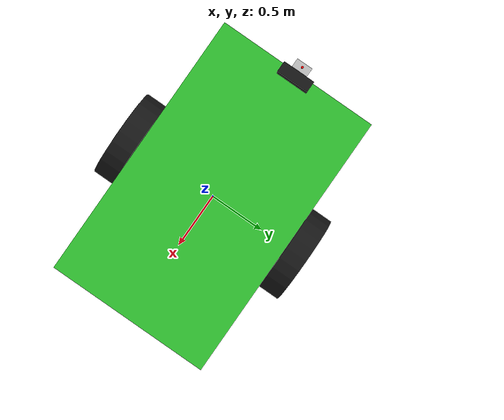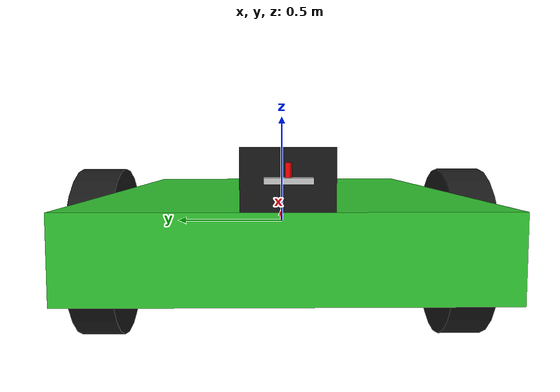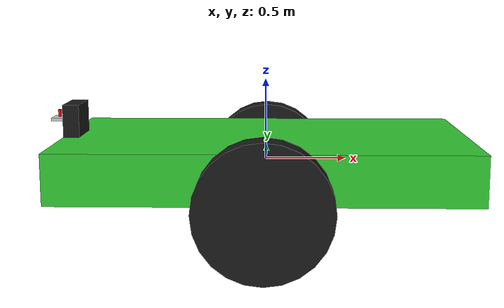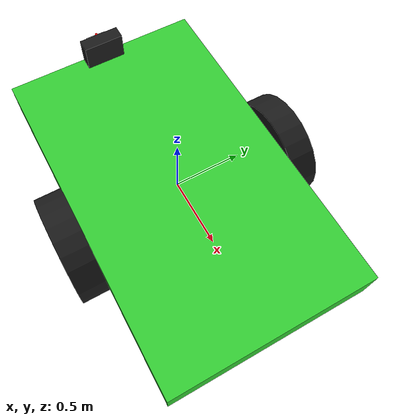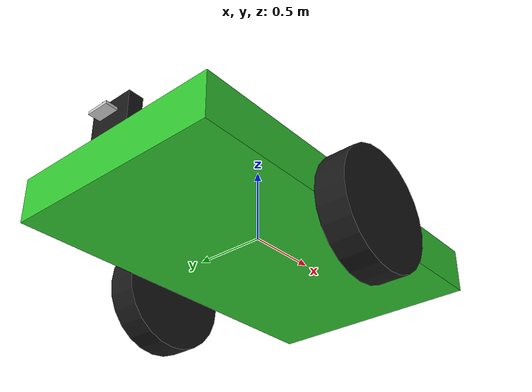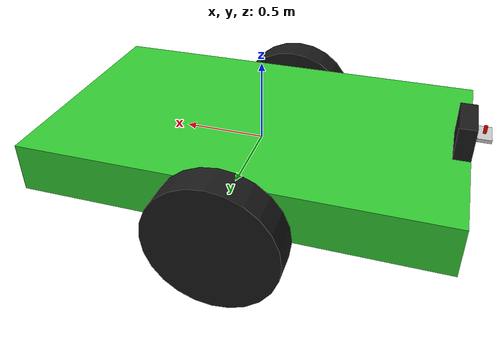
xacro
<?xml version="1.0"?>
<robot name="weedbot_tractor" xmlns:xacro="http://www.ros.org/wiki/xacro">

  <!-- Properties -->
  <xacro:property name="base_width" value="1.5"/>
  <xacro:property name="base_length" value="2.5"/>
  <xacro:property name="base_height" value="0.3"/>

  <!-- Base Link (Tractor Body) -->
  <link name="base_link">
    <visual>
      <geometry>
        <box size="${base_length} ${base_width} ${base_height}"/>
      </geometry>
      <material name="green">
        <color rgba="0.2 0.8 0.2 1.0"/>
      </material>
    </visual>
    <collision>
      <geometry>
        <box size="${base_length} ${base_width} ${base_height}"/>
      </geometry>
    </collision>
    <inertial>
      <mass value="500"/>
      <inertia ixx="50" ixy="0" ixz="0" iyy="80" iyz="0" izz="100"/>
    </inertial>
  </link>

  <!-- Camera Mount -->
  <link name="camera_mount">
    <visual>
      <geometry>
        <box size="0.1 0.3 0.2"/>
      </geometry>
      <material name="black">
        <color rgba="0.1 0.1 0.1 1.0"/>
      </material>
    </visual>
    <collision>
      <geometry>
        <box size="0.1 0.3 0.2"/>
      </geometry>
    </collision>
    <inertial>
      <mass value="2"/>
      <inertia ixx="0.02" ixy="0" ixz="0" iyy="0.02" iyz="0" izz="0.02"/>
    </inertial>
  </link>

  <joint name="camera_mount_joint" type="fixed">
    <parent link="base_link"/>
    <child link="camera_mount"/>
    <origin xyz="-${base_length/2 - 0.05} 0 ${base_height/2 + 0.1}" rpy="0 0 0"/>
  </joint>

  <!-- Camera Link -->
  <link name="camera_link">
    <visual>
      <geometry>
        <box size="0.05 0.1 0.05"/>
      </geometry>
      <material name="blue">
        <color rgba="0.2 0.2 0.8 1.0"/>
      </material>
    </visual>
    <collision>
      <geometry>
        <box size="0.05 0.1 0.05"/>
      </geometry>
    </collision>
    <inertial>
      <mass value="0.1"/>
      <inertia ixx="0.001" ixy="0" ixz="0" iyy="0.001" iyz="0" izz="0.001"/>
    </inertial>
  </link>

  <joint name="camera_joint" type="fixed">
    <parent link="camera_mount"/>
    <child link="camera_link"/>
    <origin xyz="0 0 -0.15" rpy="0 1.5708 0"/>
  </joint>

  <!-- Gazebo Camera Plugin -->
  <gazebo reference="camera_link">
    <sensor name="camera" type="camera">
      <update_rate>30.0</update_rate>
      <visualize>true</visualize>
      <camera name="weedbot_camera">
        <horizontal_fov>1.3962634</horizontal_fov>
        <image>
          <width>1280</width>
          <height>720</height>
          <format>R8G8B8</format>
        </image>
        <clip>
          <near>0.02</near>
          <far>300</far>
        </clip>
        <noise>
          <type>gaussian</type>
          <mean>0.0</mean>
          <stddev>0.007</stddev>
        </noise>
      </camera>
      <plugin name="camera_controller" filename="libgazebo_ros_camera.so">
        <ros>
          <namespace>/weedbot</namespace>
          <remapping>image_raw:=camera/image_raw</remapping>
          <remapping>camera_info:=camera/camera_info</remapping>
        </ros>
        <camera_name>camera</camera_name>
        <frame_name>camera_link</frame_name>
      </plugin>
    </sensor>
  </gazebo>

  <!-- Galvo Mirror -->
  <link name="galvo_mirror">
    <visual>
      <geometry>
        <box size="0.08 0.15 0.02"/>
      </geometry>
      <material name="silver">
        <color rgba="0.8 0.8 0.8 1.0"/>
      </material>
    </visual>
    <collision>
      <geometry>
        <box size="0.08 0.15 0.02"/>
      </geometry>
    </collision>
    <inertial>
      <mass value="0.5"/>
      <inertia ixx="0.001" ixy="0" ixz="0" iyy="0.001" iyz="0" izz="0.001"/>
    </inertial>
  </link>

  <joint name="galvo_x_joint" type="revolute">
    <parent link="camera_mount"/>
    <child link="galvo_mirror"/>
    <origin xyz="-0.1 0 0" rpy="0 0 0"/>
    <axis xyz="0 0 1"/>
    <limit lower="-0.785" upper="0.785" effort="10" velocity="5"/>
  </joint>

  <!-- Laser Pointer -->
  <link name="laser_pointer">
    <visual>
      <geometry>
        <cylinder radius="0.01" length="0.05"/>
      </geometry>
      <material name="red">
        <color rgba="1.0 0.0 0.0 1.0"/>
      </material>
    </visual>
    <inertial>
      <mass value="0.01"/>
      <inertia ixx="0.0001" ixy="0" ixz="0" iyy="0.0001" iyz="0" izz="0.0001"/>
    </inertial>
  </link>

  <joint name="laser_pointer_joint" type="fixed">
    <parent link="galvo_mirror"/>
    <child link="laser_pointer"/>
    <origin xyz="0 0 0.03" rpy="0 0 0"/>
  </joint>

  <!-- Differential Drive Plugin -->
  <gazebo>
    <plugin name="diff_drive" filename="libgazebo_ros_diff_drive.so">
      <ros>
        <namespace>/weedbot</namespace>
      </ros>
      <update_rate>50</update_rate>
      <left_joint>left_wheel_joint</left_joint>
      <right_joint>right_wheel_joint</right_joint>
      <wheel_separation>1.5</wheel_separation>
      <wheel_diameter>0.8</wheel_diameter>
      <max_wheel_torque>200</max_wheel_torque>
      <max_wheel_acceleration>1.0</max_wheel_acceleration>
      <command_topic>cmd_vel</command_topic>
      <publish_odom>true</publish_odom>
      <publish_odom_tf>true</publish_odom_tf>
      <publish_wheel_tf>false</publish_wheel_tf>
      <odometry_topic>odom</odometry_topic>
      <odometry_frame>odom</odometry_frame>
      <robot_base_frame>base_link</robot_base_frame>
    </plugin>
  </gazebo>

  <!-- Simplified wheels for differential drive -->
  <link name="left_wheel">
    <visual>
      <geometry>
        <cylinder radius="0.4" length="0.2"/>
      </geometry>
      <material name="black">
        <color rgba="0.1 0.1 0.1 1"/>
      </material>
    </visual>
    <collision>
      <geometry>
        <cylinder radius="0.4" length="0.2"/>
      </geometry>
    </collision>
    <inertial>
      <mass value="5"/>
      <inertia ixx="0.1" ixy="0" ixz="0" iyy="0.1" iyz="0" izz="0.1"/>
    </inertial>
  </link>

  <joint name="left_wheel_joint" type="continuous">
    <parent link="base_link"/>
    <child link="left_wheel"/>
    <origin xyz="0 0.85 -0.15" rpy="-1.5708 0 0"/>
    <axis xyz="0 0 1"/>
  </joint>

  <link name="right_wheel">
    <visual>
      <geometry>
        <cylinder radius="0.4" length="0.2"/>
      </geometry>
      <material name="black">
        <color rgba="0.1 0.1 0.1 1"/>
      </material>
    </visual>
    <collision>
      <geometry>
        <cylinder radius="0.4" length="0.2"/>
      </geometry>
    </collision>
    <inertial>
      <mass value="5"/>
      <inertia ixx="0.1" ixy="0" ixz="0" iyy="0.1" iyz="0" izz="0.1"/>
    </inertial>
  </link>

  <joint name="right_wheel_joint" type="continuous">
    <parent link="base_link"/>
    <child link="right_wheel"/>
    <origin xyz="0 -0.85 -0.15" rpy="-1.5708 0 0"/>
    <axis xyz="0 0 1"/>
  </joint>

</robot>
